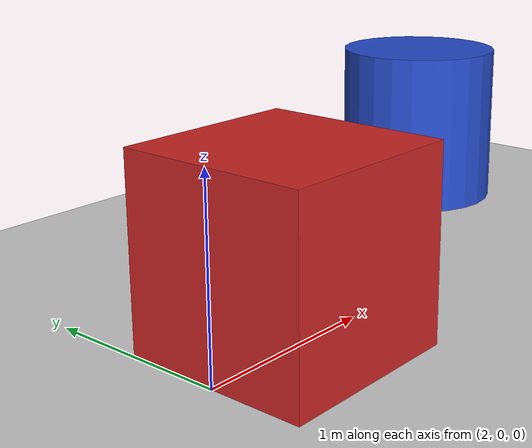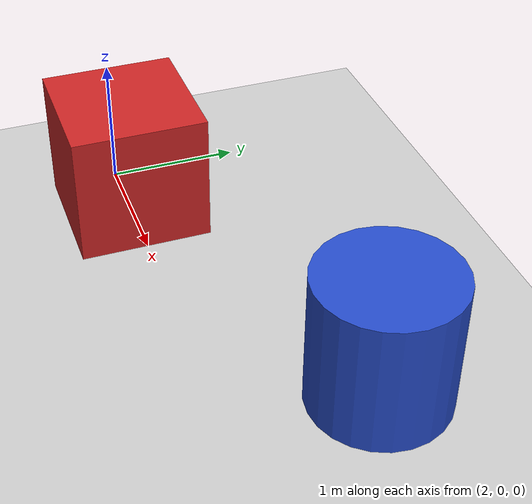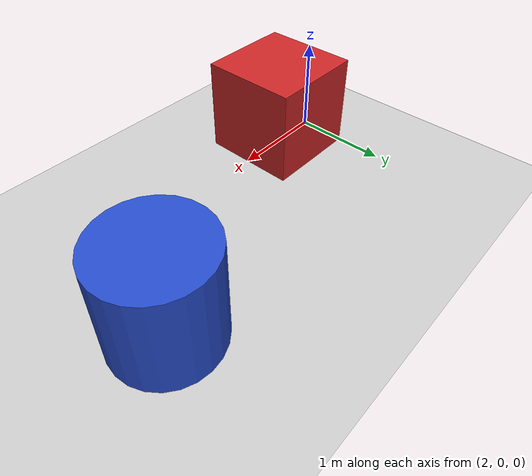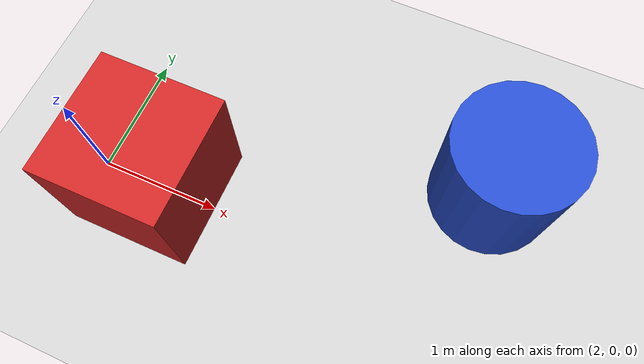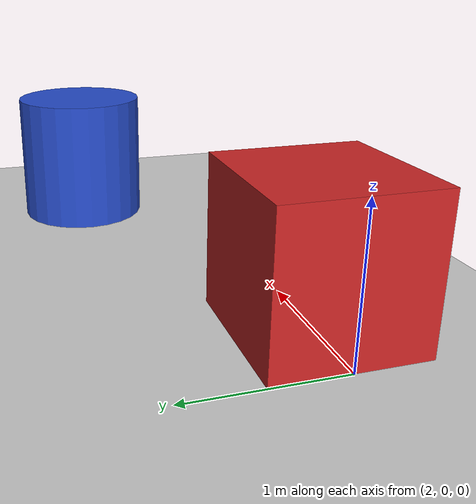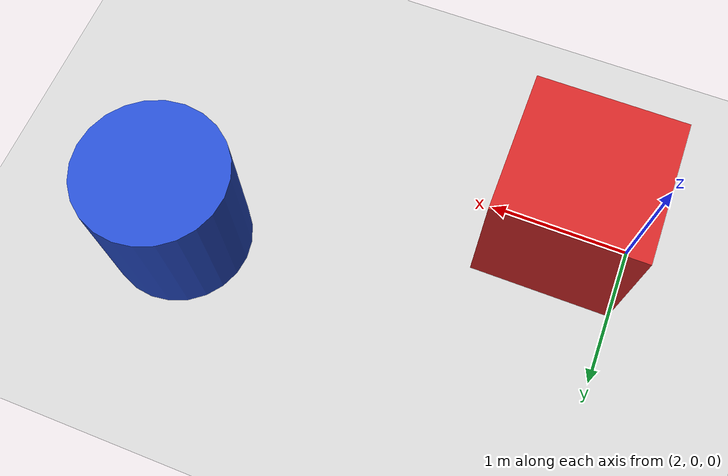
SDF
<?xml version="1.0" ?>
<sdf version="1.5">
  <world name="default">
    <include>
      <uri>model://sun</uri>
    </include>
    <include>
      <uri>model://ground_plane</uri>
    </include>

    <model name="obstaculo_cubo">
      <static>true</static>
      <pose>2.5 0 0.5 0 0 0</pose>
      <link name="link">
        <collision name="collision">
          <geometry><box><size>1 1 1</size></box></geometry>
        </collision>
        <visual name="visual">
          <geometry><box><size>1 1 1</size></box></geometry>
          <material><script><name>Gazebo/Red</name></script></material>
        </visual>
      </link>
    </model>

    <model name="obstaculo_cilindro">
      <static>true</static>
      <pose>5.0 1.0 0.5 0 0 0</pose>
      <link name="link">
        <collision name="collision">
          <geometry><cylinder><radius>0.5</radius><length>1.0</length></cylinder></geometry>
        </collision>
        <visual name="visual">
          <geometry><cylinder><radius>0.5</radius><length>1.0</length></cylinder></geometry>
          <material><script><name>Gazebo/Blue</name></script></material>
        </visual>
      </link>
    </model>
  </world>
</sdf>
